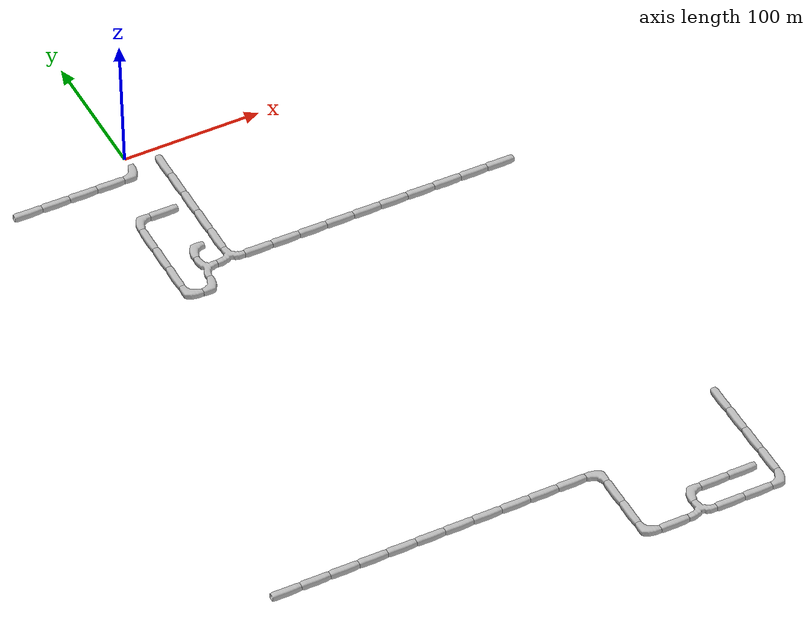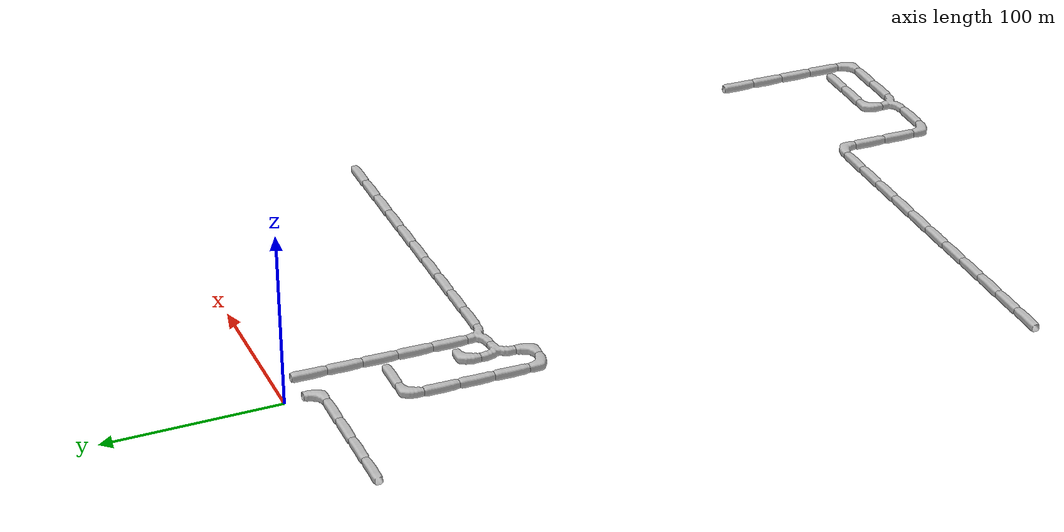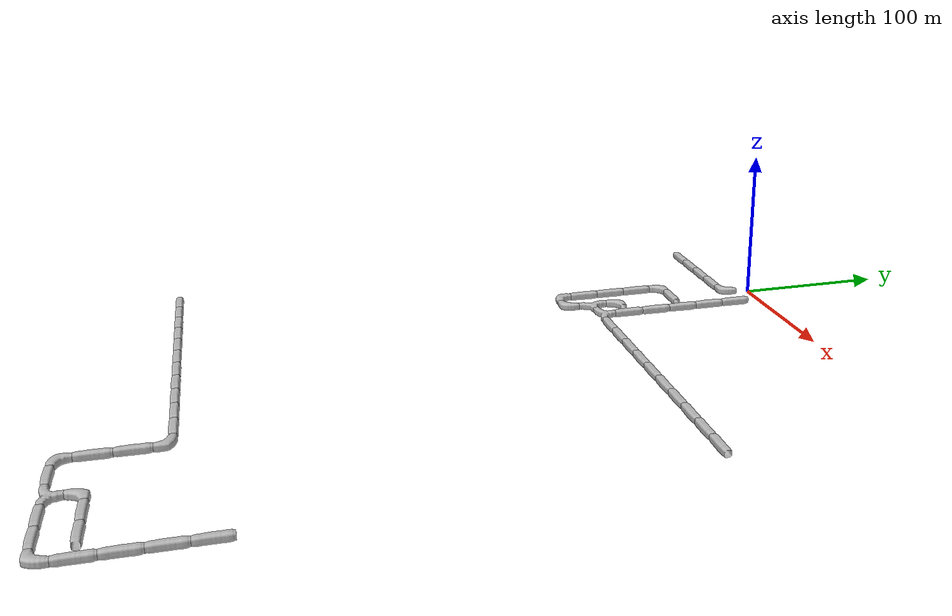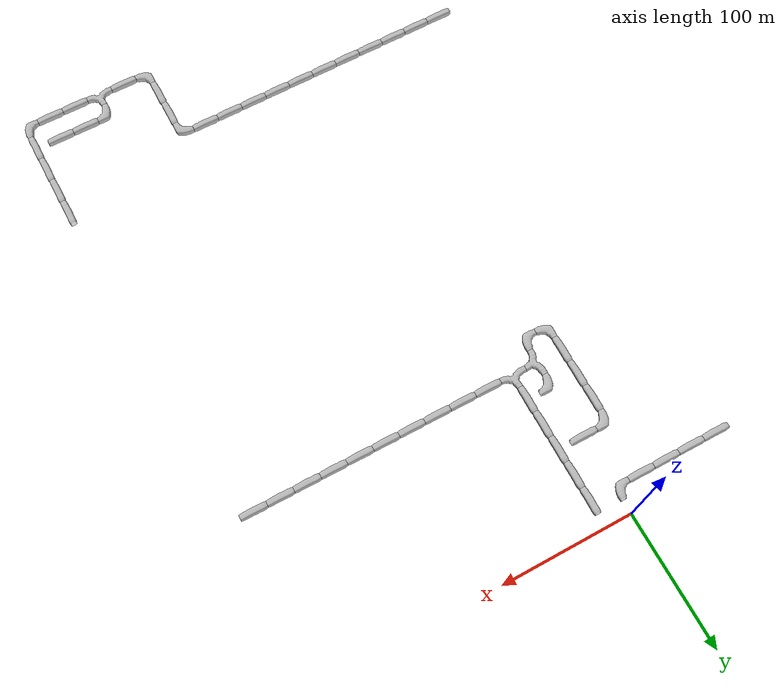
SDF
<sdf version="1.6">
 <world name="cave_32000_32">
  <include>
   <static>true</static>
   <name>cave_1_-1</name>
   <pose>20 -20 0 0 0 0.0</pose>
   <uri>model://cave_straight_20m</uri>
  </include>
  <include>
   <static>true</static>
   <name>cave_1_-2</name>
   <pose>20 -40 0 0 0 0.0</pose>
   <uri>model://cave_straight_20m</uri>
  </include>
  <include>
   <static>true</static>
   <name>cave_1_-3</name>
   <pose>20 -60 0 0 0 0.0</pose>
   <uri>model://cave_straight_20m</uri>
  </include>
  <include>
   <static>true</static>
   <name>cave_1_-4</name>
   <pose>20 -80 0 0 0 0.0</pose>
   <uri>model://cave_straight_20m</uri>
  </include>
  <include>
   <static>true</static>
   <name>cave_1_-5</name>
   <pose>20 -100 0 0 0 0.0</pose>
   <uri>model://cave_straight_20m</uri>
  </include>
  <include>
   <static>true</static>
   <name>cave_1_-6</name>
   <pose>20 -120 0 0 0 0.0</pose>
   <uri>model://cave_3way_20m</uri>
  </include>
  <include>
   <static>true</static>
   <name>cave_2_-6</name>
   <pose>40 -120 0 0 0 1.5707963267948966</pose>
   <uri>model://cave_straight_20m</uri>
  </include>
  <include>
   <static>true</static>
   <name>cave_3_-6</name>
   <pose>60 -120 0 0 0 1.5707963267948966</pose>
   <uri>model://cave_straight_20m</uri>
  </include>
  <include>
   <static>true</static>
   <name>cave_4_-6</name>
   <pose>80 -120 0 0 0 1.5707963267948966</pose>
   <uri>model://cave_straight_20m</uri>
  </include>
  <include>
   <static>true</static>
   <name>cave_5_-6</name>
   <pose>100 -120 0 0 0 1.5707963267948966</pose>
   <uri>model://cave_straight_20m</uri>
  </include>
  <include>
   <static>true</static>
   <name>cave_6_-6</name>
   <pose>120 -120 0 0 0 1.5707963267948966</pose>
   <uri>model://cave_straight_20m</uri>
  </include>
  <include>
   <static>true</static>
   <name>cave_7_-6</name>
   <pose>140 -120 0 0 0 1.5707963267948966</pose>
   <uri>model://cave_straight_20m</uri>
  </include>
  <include>
   <static>true</static>
   <name>cave_8_-6</name>
   <pose>160 -120 0 0 0 1.5707963267948966</pose>
   <uri>model://cave_straight_20m</uri>
  </include>
  <include>
   <static>true</static>
   <name>cave_9_-6</name>
   <pose>180 -120 0 0 0 1.5707963267948966</pose>
   <uri>model://cave_straight_20m</uri>
  </include>
  <include>
   <static>true</static>
   <name>cave_10_-6</name>
   <pose>200 -120 0 0 0 1.5707963267948966</pose>
   <uri>model://cave_straight_20m</uri>
  </include>
  <include>
   <static>true</static>
   <name>cave_11_-6</name>
   <pose>220 -120 0 0 0 1.5707963267948966</pose>
   <uri>model://cave_straight_20m</uri>
  </include>
  <include>
   <static>true</static>
   <name>cave_0_-6</name>
   <pose>0 -120 0 0 0 -1.5707963267948966</pose>
   <uri>model://cave_3way_20m</uri>
  </include>
  <include>
   <static>true</static>
   <name>cave_0_-7</name>
   <pose>0 -140 0 0 0 1.5707963267948966</pose>
   <uri>model://cave_L_20m</uri>
  </include>
  <include>
   <static>true</static>
   <name>cave_-1_-7</name>
   <pose>-20 -140 0 0 0 0.0</pose>
   <uri>model://cave_L_20m</uri>
  </include>
  <include>
   <static>true</static>
   <name>cave_-1_-6</name>
   <pose>-20 -120 0 0 0 0.0</pose>
   <uri>model://cave_straight_20m</uri>
  </include>
  <include>
   <static>true</static>
   <name>cave_-1_-5</name>
   <pose>-20 -100 0 0 0 0.0</pose>
   <uri>model://cave_straight_20m</uri>
  </include>
  <include>
   <static>true</static>
   <name>cave_-1_-4</name>
   <pose>-20 -80 0 0 0 0.0</pose>
   <uri>model://cave_straight_20m</uri>
  </include>
  <include>
   <static>true</static>
   <name>cave_-1_-3</name>
   <pose>-20 -60 0 0 0 -1.5707963267948966</pose>
   <uri>model://cave_L_20m</uri>
  </include>
  <include>
   <static>true</static>
   <name>cave_0_-3</name>
   <pose>0 -60 0 0 0 1.5707963267948966</pose>
   <uri>model://cave_straight_20m</uri>
  </include>
  <include>
   <static>true</static>
   <name>cave_0_-5</name>
   <pose>0 -100 0 0 0 -1.5707963267948966</pose>
   <uri>model://cave_L_20m</uri>
  </include>
  <include>
   <static>true</static>
   <name>cave_0_-1</name>
   <pose>0 -20 0 0 0 1.5707963267948966</pose>
   <uri>model://cave_L_20m</uri>
  </include>
  <include>
   <static>true</static>
   <name>cave_-1_-1</name>
   <pose>-20 -20 0 0 0 1.5707963267948966</pose>
   <uri>model://cave_straight_20m</uri>
  </include>
  <include>
   <static>true</static>
   <name>cave_-2_-1</name>
   <pose>-40 -20 0 0 0 1.5707963267948966</pose>
   <uri>model://cave_straight_20m</uri>
  </include>
  <include>
   <static>true</static>
   <name>cave_-3_-1</name>
   <pose>-60 -20 0 0 0 1.5707963267948966</pose>
   <uri>model://cave_straight_20m</uri>
  </include>
  <include>
   <static>true</static>
   <name>cave_-4_-1</name>
   <pose>-80 -20 0 0 0 1.5707963267948966</pose>
   <uri>model://cave_straight_20m</uri>
  </include>
  <include>
   <static>true</static>
   <name>cave_-4_-20</name>
   <pose>-80 -400 0 0 0 1.5707963267948966</pose>
   <uri>model://cave_straight_20m</uri>
  </include>
  <include>
   <static>true</static>
   <name>cave_-3_-20</name>
   <pose>-60 -400 0 0 0 1.5707963267948966</pose>
   <uri>model://cave_straight_20m</uri>
  </include>
  <include>
   <static>true</static>
   <name>cave_-2_-20</name>
   <pose>-40 -400 0 0 0 1.5707963267948966</pose>
   <uri>model://cave_straight_20m</uri>
  </include>
  <include>
   <static>true</static>
   <name>cave_-1_-20</name>
   <pose>-20 -400 0 0 0 1.5707963267948966</pose>
   <uri>model://cave_straight_20m</uri>
  </include>
  <include>
   <static>true</static>
   <name>cave_0_-20</name>
   <pose>0 -400 0 0 0 1.5707963267948966</pose>
   <uri>model://cave_straight_20m</uri>
  </include>
  <include>
   <static>true</static>
   <name>cave_1_-20</name>
   <pose>20 -400 0 0 0 1.5707963267948966</pose>
   <uri>model://cave_straight_20m</uri>
  </include>
  <include>
   <static>true</static>
   <name>cave_2_-20</name>
   <pose>40 -400 0 0 0 1.5707963267948966</pose>
   <uri>model://cave_straight_20m</uri>
  </include>
  <include>
   <static>true</static>
   <name>cave_3_-20</name>
   <pose>60 -400 0 0 0 1.5707963267948966</pose>
   <uri>model://cave_straight_20m</uri>
  </include>
  <include>
   <static>true</static>
   <name>cave_4_-20</name>
   <pose>80 -400 0 0 0 1.5707963267948966</pose>
   <uri>model://cave_straight_20m</uri>
  </include>
  <include>
   <static>true</static>
   <name>cave_5_-20</name>
   <pose>100 -400 0 0 0 1.5707963267948966</pose>
   <uri>model://cave_straight_20m</uri>
  </include>
  <include>
   <static>true</static>
   <name>cave_6_-20</name>
   <pose>120 -400 0 0 0 1.5707963267948966</pose>
   <uri>model://cave_straight_20m</uri>
  </include>
  <include>
   <static>true</static>
   <name>cave_7_-20</name>
   <pose>140 -400 0 0 0 3.141592653589793</pose>
   <uri>model://cave_L_20m</uri>
  </include>
  <include>
   <static>true</static>
   <name>cave_7_-21</name>
   <pose>140 -420 0 0 0 0.0</pose>
   <uri>model://cave_straight_20m</uri>
  </include>
  <include>
   <static>true</static>
   <name>cave_7_-22</name>
   <pose>140 -440 0 0 0 0.0</pose>
   <uri>model://cave_straight_20m</uri>
  </include>
  <include>
   <static>true</static>
   <name>cave_7_-23</name>
   <pose>140 -460 0 0 0 0.0</pose>
   <uri>model://cave_L_20m</uri>
  </include>
  <include>
   <static>true</static>
   <name>cave_8_-23</name>
   <pose>160 -460 0 0 0 1.5707963267948966</pose>
   <uri>model://cave_straight_20m</uri>
  </include>
  <include>
   <static>true</static>
   <name>cave_9_-23</name>
   <pose>180 -460 0 0 0 0.0</pose>
   <uri>model://cave_3way_20m</uri>
  </include>
  <include>
   <static>true</static>
   <name>cave_10_-23</name>
   <pose>200 -460 0 0 0 1.5707963267948966</pose>
   <uri>model://cave_straight_20m</uri>
  </include>
  <include>
   <static>true</static>
   <name>cave_11_-23</name>
   <pose>220 -460 0 0 0 1.5707963267948966</pose>
   <uri>model://cave_straight_20m</uri>
  </include>
  <include>
   <static>true</static>
   <name>cave_12_-23</name>
   <pose>240 -460 0 0 0 1.5707963267948966</pose>
   <uri>model://cave_L_20m</uri>
  </include>
  <include>
   <static>true</static>
   <name>cave_12_-22</name>
   <pose>240 -440 0 0 0 0.0</pose>
   <uri>model://cave_straight_20m</uri>
  </include>
  <include>
   <static>true</static>
   <name>cave_12_-21</name>
   <pose>240 -420 0 0 0 0.0</pose>
   <uri>model://cave_straight_20m</uri>
  </include>
  <include>
   <static>true</static>
   <name>cave_12_-20</name>
   <pose>240 -400 0 0 0 0.0</pose>
   <uri>model://cave_straight_20m</uri>
  </include>
  <include>
   <static>true</static>
   <name>cave_12_-19</name>
   <pose>240 -380 0 0 0 0.0</pose>
   <uri>model://cave_straight_20m</uri>
  </include>
  <include>
   <static>true</static>
   <name>cave_9_-22</name>
   <pose>180 -440 0 0 0 -1.5707963267948966</pose>
   <uri>model://cave_L_20m</uri>
  </include>
  <include>
   <static>true</static>
   <name>cave_10_-22</name>
   <pose>200 -440 0 0 0 1.5707963267948966</pose>
   <uri>model://cave_straight_20m</uri>
  </include>
  <include>
   <static>true</static>
   <name>cave_11_-22</name>
   <pose>220 -440 0 0 0 1.5707963267948966</pose>
   <uri>model://cave_straight_20m</uri>
  </include>
 </world>
</sdf>
